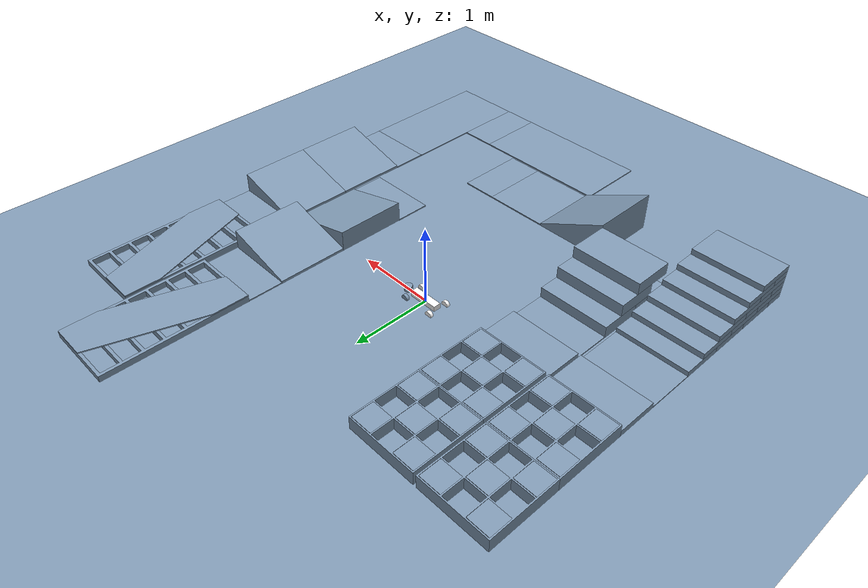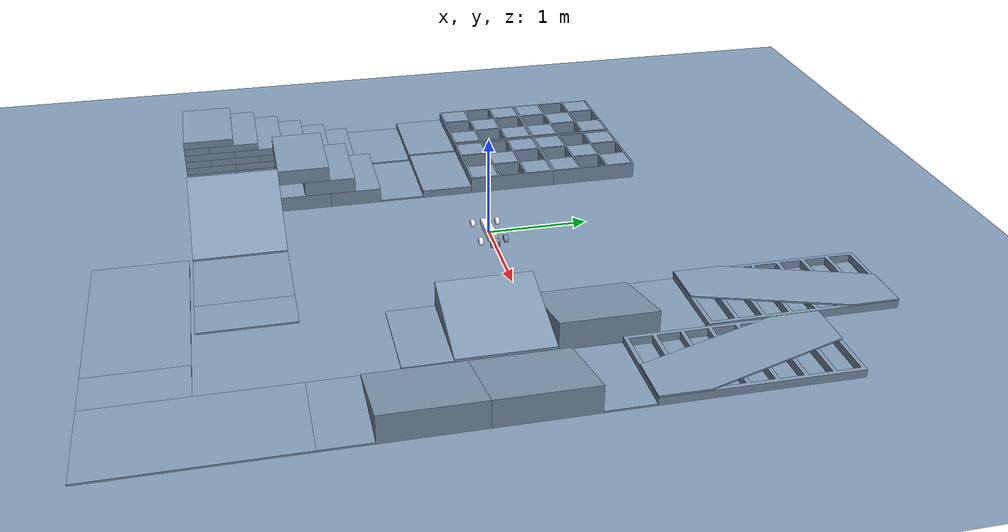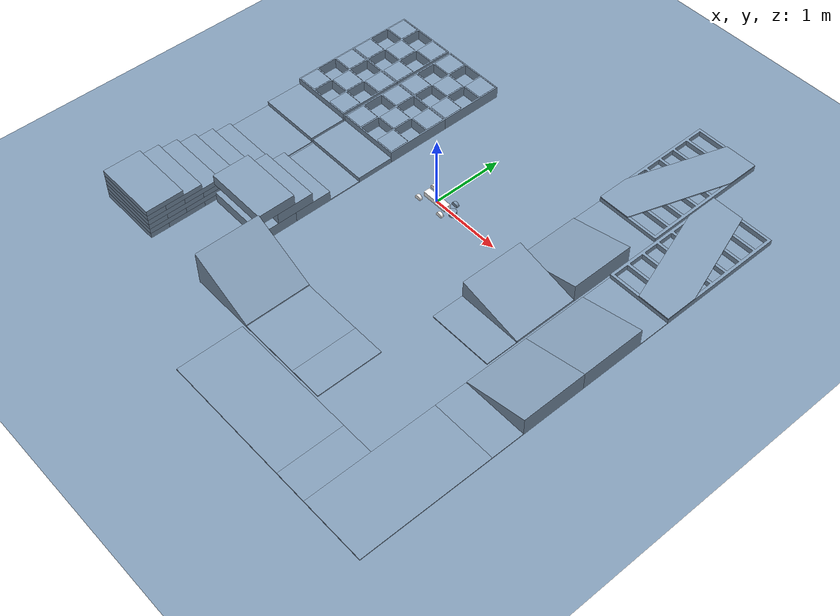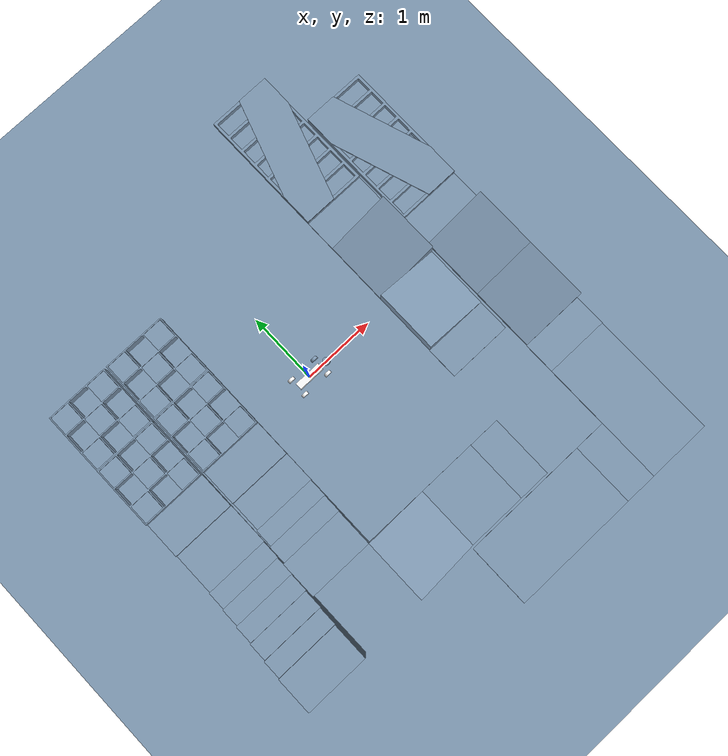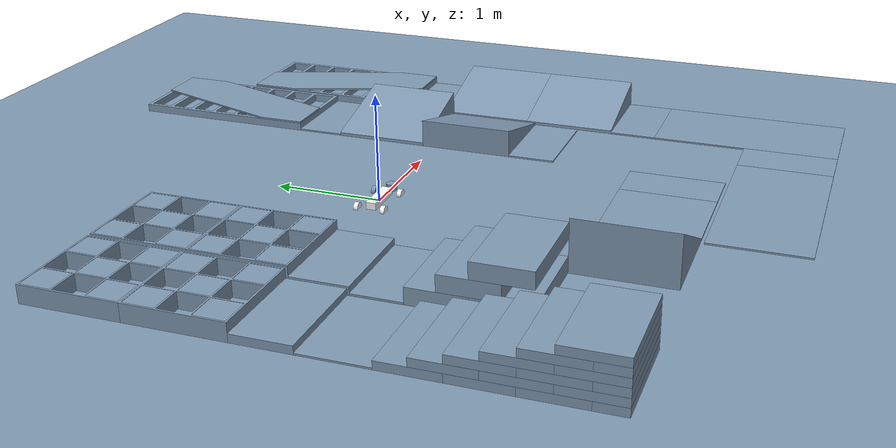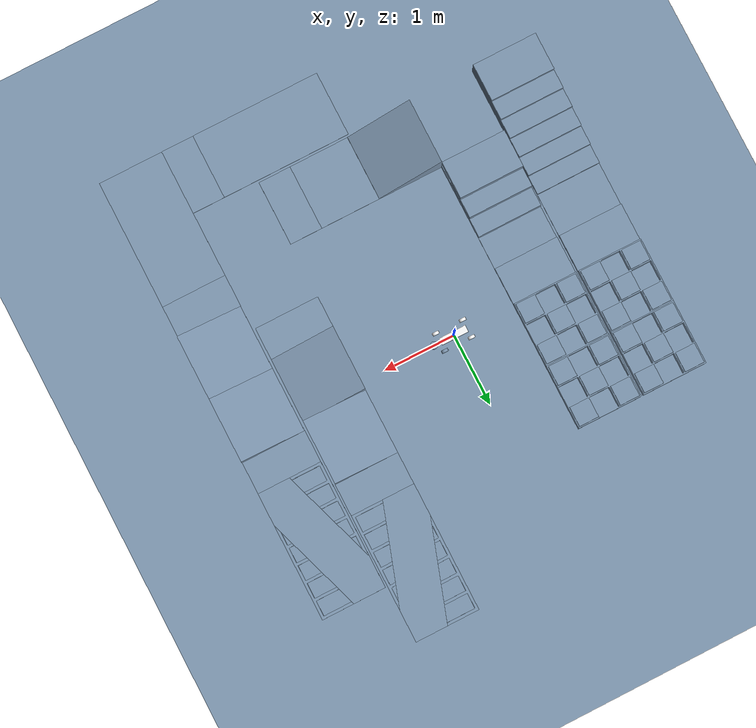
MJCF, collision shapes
<mujoco model="go2_icros2025">
  <!--
    ICROS 2025 QRC — MuJoCo Sim2Sim
    material별 convex OBJ 기반. 큰 벽 mesh 일부는 convex hull이 입구를 막아 visual-only 처리.
    Gazebo pose: 0.715068 3.66371 0
    스폰: ICROS2025 입구 앞 테스트 위치
  -->

  <include file="go2.xml"/>
  <statistic center="2.5 -1 0.5" extent="6.0"/>

  <visual>
    <headlight diffuse="0.6 0.6 0.6" ambient="0.2 0.2 0.2" specular="0 0 0"/>
    <rgba haze="0.15 0.25 0.35 1"/>
    <global azimuth="-130" elevation="-20"/>
  </visual>

  <asset>
    <texture type="skybox" builtin="gradient"
             rgb1="0.4 0.5 0.7" rgb2="0.05 0.05 0.15"
             width="512" height="3072"/>
    <texture type="2d" name="groundplane" builtin="checker"
             mark="edge" rgb1="0.25 0.25 0.25" rgb2="0.2 0.2 0.2"
             markrgb="0.5 0.5 0.5" width="200" height="200"/>
    <material name="groundplane" texture="groundplane"
              texuniform="true" texrepeat="5 5" reflectance="0.1"/>
    <material name="competition_map" rgba="0.58 0.55 0.51 1"
              specular="0.1" shininess="0.1" reflectance="0.04"/>

    <mesh name="icros_material214" file="icros2025/material214.obj" scale="0.001 0.001 0.001"/>
    <mesh name="icros_material215" file="icros2025/material215.obj" scale="0.001 0.001 0.001"/>
    <mesh name="icros_material216" file="icros2025/material216.obj" scale="0.001 0.001 0.001"/>
    <mesh name="icros_material217" file="icros2025/material217.obj" scale="0.001 0.001 0.001"/>
    <mesh name="icros_material218" file="icros2025/material218.obj" scale="0.001 0.001 0.001"/>
    <mesh name="icros_material219" file="icros2025/material219.obj" scale="0.001 0.001 0.001"/>
    <mesh name="icros_material220" file="icros2025/material220.obj" scale="0.001 0.001 0.001"/>
    <mesh name="icros_material221" file="icros2025/material221.obj" scale="0.001 0.001 0.001"/>
    <mesh name="icros_material222" file="icros2025/material222.obj" scale="0.001 0.001 0.001"/>
    <mesh name="icros_material223" file="icros2025/material223.obj" scale="0.001 0.001 0.001"/>
    <mesh name="icros_material224" file="icros2025/material224.obj" scale="0.001 0.001 0.001"/>
    <mesh name="icros_material225" file="icros2025/material225.obj" scale="0.001 0.001 0.001"/>
    <mesh name="icros_material226" file="icros2025/material226.obj" scale="0.001 0.001 0.001"/>
    <mesh name="icros_material227" file="icros2025/material227.obj" scale="0.001 0.001 0.001"/>
    <mesh name="icros_material228" file="icros2025/material228.obj" scale="0.001 0.001 0.001"/>
    <mesh name="icros_material229" file="icros2025/material229.obj" scale="0.001 0.001 0.001"/>
    <mesh name="icros_material230" file="icros2025/material230.obj" scale="0.001 0.001 0.001"/>
    <mesh name="icros_material231" file="icros2025/material231.obj" scale="0.001 0.001 0.001"/>
    <mesh name="icros_material232" file="icros2025/material232.obj" scale="0.001 0.001 0.001"/>
    <mesh name="icros_material233" file="icros2025/material233.obj" scale="0.001 0.001 0.001"/>
    <mesh name="icros_material234" file="icros2025/material234.obj" scale="0.001 0.001 0.001"/>
    <mesh name="icros_material235" file="icros2025/material235.obj" scale="0.001 0.001 0.001"/>
    <mesh name="icros_material236" file="icros2025/material236.obj" scale="0.001 0.001 0.001"/>
    <mesh name="icros_material237" file="icros2025/material237.obj" scale="0.001 0.001 0.001"/>
    <mesh name="icros_material238" file="icros2025/material238.obj" scale="0.001 0.001 0.001"/>
    <mesh name="icros_material239" file="icros2025/material239.obj" scale="0.001 0.001 0.001"/>
    <mesh name="icros_material240" file="icros2025/material240.obj" scale="0.001 0.001 0.001"/>
    <mesh name="icros_material241" file="icros2025/material241.obj" scale="0.001 0.001 0.001"/>
    <mesh name="icros_material242" file="icros2025/material242.obj" scale="0.001 0.001 0.001"/>
    <mesh name="icros_material243" file="icros2025/material243.obj" scale="0.001 0.001 0.001"/>
    <mesh name="icros_material244" file="icros2025/material244.obj" scale="0.001 0.001 0.001"/>
    <mesh name="icros_material245" file="icros2025/material245.obj" scale="0.001 0.001 0.001"/>
    <mesh name="icros_material246" file="icros2025/material246.obj" scale="0.001 0.001 0.001"/>
    <mesh name="icros_material247" file="icros2025/material247.obj" scale="0.001 0.001 0.001"/>
    <mesh name="icros_material248" file="icros2025/material248.obj" scale="0.001 0.001 0.001"/>
    <mesh name="icros_material249" file="icros2025/material249.obj" scale="0.001 0.001 0.001"/>
    <mesh name="icros_material250" file="icros2025/material250.obj" scale="0.001 0.001 0.001"/>
    <mesh name="icros_material251" file="icros2025/material251.obj" scale="0.001 0.001 0.001"/>
    <mesh name="icros_material252" file="icros2025/material252.obj" scale="0.001 0.001 0.001"/>
    <mesh name="icros_material253" file="icros2025/material253.obj" scale="0.001 0.001 0.001"/>
    <mesh name="icros_material254" file="icros2025/material254.obj" scale="0.001 0.001 0.001"/>
    <mesh name="icros_material255" file="icros2025/material255.obj" scale="0.001 0.001 0.001"/>
    <mesh name="icros_material256" file="icros2025/material256.obj" scale="0.001 0.001 0.001"/>
    <mesh name="icros_material257" file="icros2025/material257.obj" scale="0.001 0.001 0.001"/>
    <mesh name="icros_material258" file="icros2025/material258.obj" scale="0.001 0.001 0.001"/>
    <mesh name="icros_material259" file="icros2025/material259.obj" scale="0.001 0.001 0.001"/>
    <mesh name="icros_material260" file="icros2025/material260.obj" scale="0.001 0.001 0.001"/>
    <mesh name="icros_material261" file="icros2025/material261.obj" scale="0.001 0.001 0.001"/>
    <mesh name="icros_material262" file="icros2025/material262.obj" scale="0.001 0.001 0.001"/>
    <mesh name="icros_material263" file="icros2025/material263.obj" scale="0.001 0.001 0.001"/>
    <mesh name="icros_material264" file="icros2025/material264.obj" scale="0.001 0.001 0.001"/>
    <mesh name="icros_material265" file="icros2025/material265.obj" scale="0.001 0.001 0.001"/>
    <mesh name="icros_material266" file="icros2025/material266.obj" scale="0.001 0.001 0.001"/>
    <mesh name="icros_material267" file="icros2025/material267.obj" scale="0.001 0.001 0.001"/>
    <mesh name="icros_material268" file="icros2025/material268.obj" scale="0.001 0.001 0.001"/>
    <mesh name="icros_material269" file="icros2025/material269.obj" scale="0.001 0.001 0.001"/>
    <mesh name="icros_material270" file="icros2025/material270.obj" scale="0.001 0.001 0.001"/>
    <mesh name="icros_material271" file="icros2025/material271.obj" scale="0.001 0.001 0.001"/>
    <mesh name="icros_material272" file="icros2025/material272.obj" scale="0.001 0.001 0.001"/>
    <mesh name="icros_material273" file="icros2025/material273.obj" scale="0.001 0.001 0.001"/>
    <mesh name="icros_material274" file="icros2025/material274.obj" scale="0.001 0.001 0.001"/>
    <mesh name="icros_material275" file="icros2025/material275.obj" scale="0.001 0.001 0.001"/>
    <mesh name="icros_material276" file="icros2025/material276.obj" scale="0.001 0.001 0.001"/>
    <mesh name="icros_material277" file="icros2025/material277.obj" scale="0.001 0.001 0.001"/>
    <mesh name="icros_material278" file="icros2025/material278.obj" scale="0.001 0.001 0.001"/>
    <mesh name="icros_material279" file="icros2025/material279.obj" scale="0.001 0.001 0.001"/>
    <mesh name="icros_material280" file="icros2025/material280.obj" scale="0.001 0.001 0.001"/>
    <mesh name="icros_material281" file="icros2025/material281.obj" scale="0.001 0.001 0.001"/>
    <mesh name="icros_material282" file="icros2025/material282.obj" scale="0.001 0.001 0.001"/>
    <mesh name="icros_material283" file="icros2025/material283.obj" scale="0.001 0.001 0.001"/>
    <mesh name="icros_material284" file="icros2025/material284.obj" scale="0.001 0.001 0.001"/>
  </asset>

  <worldbody>
    <light name="sun" pos="2 1 12" dir="-0.1 -0.1 -1" directional="true"
           diffuse="0.75 0.75 0.75" specular="0.1 0.1 0.1" castshadow="true"/>
    <light name="fill_1" pos="6 6 8" dir="-0.6 -0.6 -1" directional="true"
           diffuse="0.3 0.3 0.3" castshadow="false"/>
    <light name="fill_2" pos="-4 -2 8" dir="0.4 0.2 -1" directional="true"
           diffuse="0.25 0.25 0.25" castshadow="false"/>

    <geom name="floor" type="plane" size="50 50 0.1"
          material="groundplane" pos="0 0 0"
          contype="1" conaffinity="1" friction="0.8 0.005 0.0001"/>

    <!-- material214 is the large ICROS2025 base-floor mesh; keep the MuJoCo plane instead. -->
    <geom name="icros_material215" type="mesh" mesh="icros_material215" material="competition_map" pos="0.715068 3.66371 0" contype="1" conaffinity="1" friction="0.5 0.005 0.0001"/>
    <geom name="icros_material216" type="mesh" mesh="icros_material216" material="competition_map" pos="0.715068 3.66371 0" contype="1" conaffinity="1" friction="0.5 0.005 0.0001"/>
    <geom name="icros_material217" type="mesh" mesh="icros_material217" material="competition_map" pos="0.715068 3.66371 0" contype="1" conaffinity="1" friction="0.5 0.005 0.0001"/>
    <geom name="icros_material218" type="mesh" mesh="icros_material218" material="competition_map" pos="0.715068 3.66371 0" contype="1" conaffinity="1" friction="0.5 0.005 0.0001"/>
    <geom name="icros_material219" type="mesh" mesh="icros_material219" material="competition_map" pos="0.715068 3.66371 0" contype="1" conaffinity="1" friction="0.5 0.005 0.0001"/>
    <geom name="icros_material220" type="mesh" mesh="icros_material220" material="competition_map" pos="0.715068 3.66371 0" contype="1" conaffinity="1" friction="0.5 0.005 0.0001"/>
    <geom name="icros_material221" type="mesh" mesh="icros_material221" material="competition_map" pos="0.715068 3.66371 0" contype="1" conaffinity="1" friction="0.5 0.005 0.0001"/>
    <geom name="icros_material222" type="mesh" mesh="icros_material222" material="competition_map" pos="0.715068 3.66371 0" contype="1" conaffinity="1" friction="0.5 0.005 0.0001"/>
    <geom name="icros_material223" type="mesh" mesh="icros_material223" material="competition_map" pos="0.715068 3.66371 0" contype="1" conaffinity="1" friction="0.5 0.005 0.0001"/>
    <geom name="icros_material224" type="mesh" mesh="icros_material224" material="competition_map" pos="0.715068 3.66371 0" contype="1" conaffinity="1" friction="0.5 0.005 0.0001"/>
    <geom name="icros_material225" type="mesh" mesh="icros_material225" material="competition_map" pos="0.715068 3.66371 0" contype="1" conaffinity="1" friction="0.5 0.005 0.0001"/>
    <geom name="icros_material226" type="mesh" mesh="icros_material226" material="competition_map" pos="0.715068 3.66371 0" contype="1" conaffinity="1" friction="0.5 0.005 0.0001"/>
    <geom name="icros_material227" type="mesh" mesh="icros_material227" material="competition_map" pos="0.715068 3.66371 0" contype="0" conaffinity="0" friction="0.5 0.005 0.0001"/>
    <geom name="icros_material228" type="mesh" mesh="icros_material228" material="competition_map" pos="0.715068 3.66371 0" contype="1" conaffinity="1" friction="0.5 0.005 0.0001"/>
    <geom name="icros_material229" type="mesh" mesh="icros_material229" material="competition_map" pos="0.715068 3.66371 0" contype="1" conaffinity="1" friction="0.5 0.005 0.0001"/>
    <geom name="icros_material230" type="mesh" mesh="icros_material230" material="competition_map" pos="0.715068 3.66371 0" contype="1" conaffinity="1" friction="0.5 0.005 0.0001"/>
    <geom name="icros_material231" type="mesh" mesh="icros_material231" material="competition_map" pos="0.715068 3.66371 0" contype="0" conaffinity="0" friction="0.5 0.005 0.0001"/>
    <geom name="icros_material232" type="mesh" mesh="icros_material232" material="competition_map" pos="0.715068 3.66371 0" contype="1" conaffinity="1" friction="0.5 0.005 0.0001"/>
    <geom name="icros_material233" type="mesh" mesh="icros_material233" material="competition_map" pos="0.715068 3.66371 0" contype="0" conaffinity="0" friction="0.5 0.005 0.0001"/>
    <geom name="icros_material234" type="mesh" mesh="icros_material234" material="competition_map" pos="0.715068 3.66371 0" contype="1" conaffinity="1" friction="0.5 0.005 0.0001"/>
    <geom name="icros_material235" type="mesh" mesh="icros_material235" material="competition_map" pos="0.715068 3.66371 0" contype="1" conaffinity="1" friction="0.5 0.005 0.0001"/>
    <geom name="icros_material236" type="mesh" mesh="icros_material236" material="competition_map" pos="0.715068 3.66371 0" contype="0" conaffinity="0" friction="0.5 0.005 0.0001"/>
    <geom name="icros_material237" type="mesh" mesh="icros_material237" material="competition_map" pos="0.715068 3.66371 0" contype="1" conaffinity="1" friction="0.5 0.005 0.0001"/>
    <geom name="icros_material238" type="mesh" mesh="icros_material238" material="competition_map" pos="0.715068 3.66371 0" contype="1" conaffinity="1" friction="0.5 0.005 0.0001"/>
    <geom name="icros_material239" type="mesh" mesh="icros_material239" material="competition_map" pos="0.715068 3.66371 0" contype="1" conaffinity="1" friction="0.5 0.005 0.0001"/>
    <geom name="icros_material240" type="mesh" mesh="icros_material240" material="competition_map" pos="0.715068 3.66371 0" contype="1" conaffinity="1" friction="0.5 0.005 0.0001"/>
    <geom name="icros_material241" type="mesh" mesh="icros_material241" material="competition_map" pos="0.715068 3.66371 0" contype="1" conaffinity="1" friction="0.5 0.005 0.0001"/>
    <geom name="icros_material242" type="mesh" mesh="icros_material242" material="competition_map" pos="0.715068 3.66371 0" contype="1" conaffinity="1" friction="0.5 0.005 0.0001"/>
    <geom name="icros_material243" type="mesh" mesh="icros_material243" material="competition_map" pos="0.715068 3.66371 0" contype="1" conaffinity="1" friction="0.5 0.005 0.0001"/>
    <geom name="icros_material244" type="mesh" mesh="icros_material244" material="competition_map" pos="0.715068 3.66371 0" contype="1" conaffinity="1" friction="0.5 0.005 0.0001"/>
    <geom name="icros_material245" type="mesh" mesh="icros_material245" material="competition_map" pos="0.715068 3.66371 0" contype="1" conaffinity="1" friction="0.5 0.005 0.0001"/>
    <geom name="icros_material246" type="mesh" mesh="icros_material246" material="competition_map" pos="0.715068 3.66371 0" contype="1" conaffinity="1" friction="0.5 0.005 0.0001"/>
    <geom name="icros_material247" type="mesh" mesh="icros_material247" material="competition_map" pos="0.715068 3.66371 0" contype="1" conaffinity="1" friction="0.5 0.005 0.0001"/>
    <geom name="icros_material248" type="mesh" mesh="icros_material248" material="competition_map" pos="0.715068 3.66371 0" contype="1" conaffinity="1" friction="0.5 0.005 0.0001"/>
    <geom name="icros_material249" type="mesh" mesh="icros_material249" material="competition_map" pos="0.715068 3.66371 0" contype="1" conaffinity="1" friction="0.5 0.005 0.0001"/>
    <geom name="icros_material250" type="mesh" mesh="icros_material250" material="competition_map" pos="0.715068 3.66371 0" contype="1" conaffinity="1" friction="0.5 0.005 0.0001"/>
    <geom name="icros_material251" type="mesh" mesh="icros_material251" material="competition_map" pos="0.715068 3.66371 0" contype="1" conaffinity="1" friction="0.5 0.005 0.0001"/>
    <geom name="icros_material252" type="mesh" mesh="icros_material252" material="competition_map" pos="0.715068 3.66371 0" contype="1" conaffinity="1" friction="0.5 0.005 0.0001"/>
    <geom name="icros_material253" type="mesh" mesh="icros_material253" material="competition_map" pos="0.715068 3.66371 0" contype="1" conaffinity="1" friction="0.5 0.005 0.0001"/>
    <geom name="icros_material254" type="mesh" mesh="icros_material254" material="competition_map" pos="0.715068 3.66371 0" contype="1" conaffinity="1" friction="0.5 0.005 0.0001"/>
    <geom name="icros_material255" type="mesh" mesh="icros_material255" material="competition_map" pos="0.715068 3.66371 0" contype="1" conaffinity="1" friction="0.5 0.005 0.0001"/>
    <geom name="icros_material256" type="mesh" mesh="icros_material256" material="competition_map" pos="0.715068 3.66371 0" contype="0" conaffinity="0" friction="0.5 0.005 0.0001"/>
    <geom name="icros_material257" type="mesh" mesh="icros_material257" material="competition_map" pos="0.715068 3.66371 0" contype="1" conaffinity="1" friction="0.5 0.005 0.0001"/>
    <geom name="icros_material258" type="mesh" mesh="icros_material258" material="competition_map" pos="0.715068 3.66371 0" contype="1" conaffinity="1" friction="0.5 0.005 0.0001"/>
    <geom name="icros_material259" type="mesh" mesh="icros_material259" material="competition_map" pos="0.715068 3.66371 0" contype="1" conaffinity="1" friction="0.5 0.005 0.0001"/>
    <geom name="icros_material260" type="mesh" mesh="icros_material260" material="competition_map" pos="0.715068 3.66371 0" contype="1" conaffinity="1" friction="0.5 0.005 0.0001"/>
    <geom name="icros_material261" type="mesh" mesh="icros_material261" material="competition_map" pos="0.715068 3.66371 0" contype="1" conaffinity="1" friction="0.5 0.005 0.0001"/>
    <geom name="icros_material262" type="mesh" mesh="icros_material262" material="competition_map" pos="0.715068 3.66371 0" contype="1" conaffinity="1" friction="0.5 0.005 0.0001"/>
    <geom name="icros_material263" type="mesh" mesh="icros_material263" material="competition_map" pos="0.715068 3.66371 0" contype="1" conaffinity="1" friction="0.5 0.005 0.0001"/>
    <geom name="icros_material264" type="mesh" mesh="icros_material264" material="competition_map" pos="0.715068 3.66371 0" contype="1" conaffinity="1" friction="0.5 0.005 0.0001"/>
    <geom name="icros_material265" type="mesh" mesh="icros_material265" material="competition_map" pos="0.715068 3.66371 0" contype="1" conaffinity="1" friction="0.5 0.005 0.0001"/>
    <geom name="icros_material266" type="mesh" mesh="icros_material266" material="competition_map" pos="0.715068 3.66371 0" contype="1" conaffinity="1" friction="0.5 0.005 0.0001"/>
    <geom name="icros_material267" type="mesh" mesh="icros_material267" material="competition_map" pos="0.715068 3.66371 0" contype="1" conaffinity="1" friction="0.5 0.005 0.0001"/>
    <geom name="icros_material268" type="mesh" mesh="icros_material268" material="competition_map" pos="0.715068 3.66371 0" contype="1" conaffinity="1" friction="0.5 0.005 0.0001"/>
    <geom name="icros_material269" type="mesh" mesh="icros_material269" material="competition_map" pos="0.715068 3.66371 0" contype="1" conaffinity="1" friction="0.5 0.005 0.0001"/>
    <geom name="icros_material270" type="mesh" mesh="icros_material270" material="competition_map" pos="0.715068 3.66371 0" contype="1" conaffinity="1" friction="0.5 0.005 0.0001"/>
    <geom name="icros_material271" type="mesh" mesh="icros_material271" material="competition_map" pos="0.715068 3.66371 0" contype="1" conaffinity="1" friction="0.5 0.005 0.0001"/>
    <geom name="icros_material272" type="mesh" mesh="icros_material272" material="competition_map" pos="0.715068 3.66371 0" contype="1" conaffinity="1" friction="0.5 0.005 0.0001"/>
    <geom name="icros_material273" type="mesh" mesh="icros_material273" material="competition_map" pos="0.715068 3.66371 0" contype="1" conaffinity="1" friction="0.5 0.005 0.0001"/>
    <geom name="icros_material274" type="mesh" mesh="icros_material274" material="competition_map" pos="0.715068 3.66371 0" contype="1" conaffinity="1" friction="0.5 0.005 0.0001"/>
    <geom name="icros_material275" type="mesh" mesh="icros_material275" material="competition_map" pos="0.715068 3.66371 0" contype="1" conaffinity="1" friction="0.5 0.005 0.0001"/>
    <geom name="icros_material276" type="mesh" mesh="icros_material276" material="competition_map" pos="0.715068 3.66371 0" contype="1" conaffinity="1" friction="0.5 0.005 0.0001"/>
    <geom name="icros_material277" type="mesh" mesh="icros_material277" material="competition_map" pos="0.715068 3.66371 0" contype="1" conaffinity="1" friction="0.5 0.005 0.0001"/>
    <geom name="icros_material278" type="mesh" mesh="icros_material278" material="competition_map" pos="0.715068 3.66371 0" contype="1" conaffinity="1" friction="0.5 0.005 0.0001"/>
    <geom name="icros_material279" type="mesh" mesh="icros_material279" material="competition_map" pos="0.715068 3.66371 0" contype="1" conaffinity="1" friction="0.5 0.005 0.0001"/>
    <geom name="icros_material280" type="mesh" mesh="icros_material280" material="competition_map" pos="0.715068 3.66371 0" contype="1" conaffinity="1" friction="0.5 0.005 0.0001"/>
    <geom name="icros_material281" type="mesh" mesh="icros_material281" material="competition_map" pos="0.715068 3.66371 0" contype="1" conaffinity="1" friction="0.5 0.005 0.0001"/>
    <geom name="icros_material282" type="mesh" mesh="icros_material282" material="competition_map" pos="0.715068 3.66371 0" contype="1" conaffinity="1" friction="0.5 0.005 0.0001"/>
    <geom name="icros_material283" type="mesh" mesh="icros_material283" material="competition_map" pos="0.715068 3.66371 0" contype="1" conaffinity="1" friction="0.5 0.005 0.0001"/>
    <geom name="icros_material284" type="mesh" mesh="icros_material284" material="competition_map" pos="0.715068 3.66371 0" contype="1" conaffinity="1" friction="0.5 0.005 0.0001"/>
  </worldbody>

  <keyframe>
    <key name="start"
         qpos="1.85 4.50 0.70  0.7071068 0 0 0.7071068
               0.0  0.8 -1.5
               0.0  0.8 -1.5
               0.0  1.0 -1.5
               0.0  1.0 -1.5"
         ctrl="0 0 0  0 0 0  0 0 0  0 0 0"/>
  </keyframe>

</mujoco>

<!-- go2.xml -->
<mujoco model="go2_description">
  <compiler angle="radian" meshdir="assets/"/>

  <asset>
    <mesh name="base_0"          file="base_0.obj"/>
    <mesh name="base_1"          file="base_1.obj"/>
    <mesh name="base_2"          file="base_2.obj"/>
    <mesh name="base_3"          file="base_3.obj"/>
    <mesh name="base_4"  		 file="base_4.obj"/>
    <mesh name="hip_0" 			 file="hip_0.obj"/>
    <mesh name="hip_1" 			 file="hip_1.obj"/>
    <mesh name="thigh_0" 		 file="thigh_0.obj"/>
    <mesh name="thigh_1" 		 file="thigh_1.obj"/>
    <mesh name="thigh_mirror_0"  file="thigh_mirror_0.obj"/>
    <mesh name="thigh_mirror_1"  file="thigh_mirror_1.obj"/>
    <mesh name="calf_0" 		 file="calf_0.obj"/>
    <mesh name="calf_1" 		 file="calf_1.obj"/>
    <mesh name="calf_mirror_0"   file="calf_mirror_0.obj"/>
    <mesh name="calf_mirror_1"   file="calf_mirror_1.obj"/>
    <mesh name="foot"            file="foot.obj"/>
  </asset>

  <default>
      <geom contype="1" conaffinity="1" friction="0.6 0.3 0.3" rgba="0.5 0.6 0.7 1" margin="0.001" group="0"/>
      <motor ctrlrange="-33.5 33.5" ctrllimited="true"/>

      <joint type="hinge" armature="0.01" damping="0.2" frictionloss="0.2" />
  </default>

  <worldbody>

    <body name="base" pos="0 0 0">
		<freejoint name="root"/>
		<inertial pos="0.021112 0 -0.00536" mass="6.921" fullinertia="0.02448 0.098077 0.107 0.00012166 0.0014849 -3.12E-05"/>
		<geom type="mesh"  contype="0" conaffinity="0" group="1" density="0" mesh="base_0" rgba="0 0 0 1"  />
		<geom mesh="base_0" rgba="0 0 0 1" type="mesh" contype="0" conaffinity="0" group="1" density="0" />
		<geom mesh="base_1" rgba="0 0 0 1" type="mesh" contype="0" conaffinity="0" group="1" density="0" />
		<geom mesh="base_2" rgba="0 0 0 1" type="mesh" contype="0" conaffinity="0" group="1" density="0" />
		<geom mesh="base_3" rgba="0 0 0 1" type="mesh" contype="0" conaffinity="0" group="1" density="0" />
		<geom mesh="base_4" rgba="0.671705 0.692426 0.774270 1" type="mesh" contype="0" conaffinity="0" group="1" density="0" />
		<geom size="0.1881 0.04675 0.057" type="box" rgba="1 1 1 1"/>
		<geom size="0.05 0.045" pos="0.285 0 0.01" type="cylinder"/>
		<geom size="0.047" pos="0.293 0 -0.06"/>

		<body name="FL_hip" pos="0.1934 0.0465 0">
		  <inertial pos="-0.0054 0.00194 -0.000105" quat="0.497014 0.499245 0.505462 0.498237" mass="0.678" diaginertia="0.00088403 0.000596003 0.000479967"/>
		  <joint name="FL_hip_joint" type="hinge" pos="0 0 0" axis="1 0 0" range="-1.0472 1.0472" limited="true" actuatorfrcrange="-0.9472 0.9472" stiffness="15" damping="2"/>
		  <geom mesh="hip_0" rgba=".9 .95 .95 1" type="mesh" contype="0" conaffinity="0" group="1" density="0" />
          <geom mesh="hip_1" rgba="0.671705 0.692426 0.774270 1" type="mesh" contype="0" conaffinity="0" group="1" density="0" />
		  <geom size="0.046 0.02" pos="0 0.08 0" quat="1 1 0 0" type="cylinder"/>
		  <geom size="0.046 0.02" pos="0 0.08 0" quat="0.707107 0.707107 0 0" type="cylinder" rgba="1 1 1 1"/>

		  <body name="FL_thigh" pos="0 0.0955 0">
			<inertial pos="-0.00374 -0.0223 -0.0327" quat="0.829533 0.0847635 -0.0200632 0.551623" mass="1.152" diaginertia="0.00594973 0.00584149 0.000878787"/>
			<joint name="FL_thigh_joint" type="hinge" pos="0 0 0" axis="0 1 0" range="-1.5708 3.4907" limited="true"  actuatorfrcrange="-1.5708 3.4907" stiffness="15" damping="2"/>
			<geom mesh="thigh_0" rgba=".9 .95 .95 1" type="mesh" contype="0" conaffinity="0" group="1" density="0" />
          	<geom mesh="thigh_1" rgba="0.671705 0.692426 0.774270 1" type="mesh" contype="0" conaffinity="0" group="1" density="0" />
			<geom size="0.055 0.01225 0.017" pos="0 0 -0.1065" quat="0.707107 0 0.707107 0" type="box" rgba="1 1 1 1"/>

			<body name="FL_calf" pos="0 0 -0.213">
			  <inertial pos="0.00629595 -0.000622121 -0.141417" quat="0.710672 0.00154099 -0.00450087 0.703508" mass="0.241352" diaginertia="0.0014901 0.00146356 5.31397e-05"/>
			  <joint name="FL_calf_joint" type="hinge" pos="0 0 0" axis="0 1 0" range="-2.7227 -0.83776" limited="true" actuatorfrcrange="-45.43 45.43" stiffness="15" damping="2"/>
			  <geom mesh="calf_0" rgba="0.671705 0.692426 0.774270 1" type="mesh" contype="0" conaffinity="0" group="1" density="0" />
              <geom mesh="calf_1" rgba="0 0 0 1" type="mesh" contype="0" conaffinity="0" group="1" density="0" />
              <geom pos="0 0 -0.213" mesh="foot" type="mesh" contype="0" conaffinity="0" group="1" density="0"  rgba="0 0 0 1"/>
			  <geom size="0.012 0.06" pos="0.008 0 -0.06" quat="0.994493 0 -0.104807 0" type="cylinder" rgba="1 1 1 1"/>
			  <geom size="0.011 0.0325" pos="0.02 0 -0.148" quat="0.999688 0 0.0249974 0" type="cylinder"/>
			  <geom size="0.0155 0.015" pos="0.00801333 0 -0.18745" quat="0.965093 0 0.261909 0" type="cylinder"/>

				<body name="FL_foot" pos="0 0 -0.213">
					<geom size="0.022" pos="0 0 0" rgba="0 0 0 1" friction="0.8 0.02 0.01" type="sphere"/>
				</body>
			</body>
		  </body>
		</body>

		<body name="FR_hip" pos="0.1934 -0.0465 0">
		  <inertial pos="-0.0054 -0.00194 -0.000105" quat="0.498237 0.505462 0.499245 0.497014" mass="0.678" diaginertia="0.00088403 0.000596003 0.000479967"/>
		  <joint name="FR_hip_joint" type="hinge" pos="0 0 0" axis="1 0 0" range="-1.0472 1.0472" limited="true" actuatorfrcrange="-0.9472 0.9472" stiffness="15" damping="2"/>
          <geom mesh="hip_0" rgba=".9 .95 .95 1" type="mesh" contype="0" conaffinity="0" group="1" density="0"  quat="4.63268e-05 1 0 0"/>
          <geom mesh="hip_1" rgba="0.671705 0.692426 0.774270 1" type="mesh" contype="0" conaffinity="0" group="1" density="0"  quat="4.63268e-05 1 0 0" />
		  <geom size="0.046 0.02" pos="0 -0.08 0" quat="0.707107 0.707107 0 0" type="cylinder" rgba="1 1 1 1"/>

		  <body name="FR_thigh" pos="0 -0.0955 0">
			<inertial pos="-0.00374 0.0223 -0.0327" quat="0.551623 -0.0200632 0.0847635 0.829533" mass="1.152" diaginertia="0.00594973 0.00584149 0.000878787" />
			<joint name="FR_thigh_joint" type="hinge"  pos="0 0 0" axis="0 1 0" range="-1.5708 3.4907" limited="true"  actuatorfrcrange="-1.5708 3.4907" stiffness="15" damping="2"/>
            <geom mesh="thigh_mirror_0" rgba=".9 .95 .95 1" type="mesh" contype="0" conaffinity="0" group="1" density="0" />
            <geom mesh="thigh_mirror_1" rgba="0.671705 0.692426 0.774270 1" type="mesh" contype="0" conaffinity="0" group="1" density="0" />
			<geom size="0.055 0.01225 0.017" pos="0 0 -0.1065" quat="0.707107 0 0.707107 0" type="box" rgba="1 1 1 1"/>

			<body name="FR_calf" pos="0 0 -0.213">
			  <inertial pos="0.00629595 0.000622121 -0.141417" quat="0.703508 -0.00450087 0.00154099 0.710672" mass="0.241352" diaginertia="0.0014901 0.00146356 5.31397e-05"/>
			  <joint name="FR_calf_joint" type="hinge"  pos="0 0 0" axis="0 1 0" range="-2.7227 -0.83776" limited="true" actuatorfrcrange="-45.43 45.43" stiffness="15" damping="2"/>
			  <geom mesh="calf_mirror_0" rgba="0.671705 0.692426 0.774270 1" type="mesh" contype="0" conaffinity="0" group="1" density="0" />
              <geom mesh="calf_mirror_1" rgba="0 0 0 1" type="mesh" contype="0" conaffinity="0" group="1" density="0" />
              <geom pos="0 0 -0.213" mesh="foot" type="mesh" contype="0" conaffinity="0" group="1" density="0"  rgba="0 0 0 1"/>
			  <geom size="0.013 0.06" pos="0.01 0 -0.06" quat="0.995004 0 -0.0998334 0" type="cylinder" rgba="1 1 1 1"/>
			  <geom size="0.011 0.0325" pos="0.02 0 -0.148" quat="0.999688 0 0.0249974 0" type="cylinder"/>
			  <geom size="0.0155 0.015" pos="0.00801333 0 -0.18745" quat="0.965093 0 0.261909 0" type="cylinder"/>

				<body name="FR_foot" pos="0 0 -0.213">
					<geom size="0.022" pos="0 0 0" rgba="0 0 0 1" friction="0.8 0.02 0.01" type="sphere" />
				</body>
			</body>
		  </body>
		</body>

		<body name="RL_hip" pos="-0.1934 0.0465 0">
		  <inertial pos="0.0054 0.00194 -0.000105" quat="0.505462 0.498237 0.497014 0.499245" mass="0.678" diaginertia="0.00088403 0.000596003 0.000479967"/>
		  <joint name="RL_hip_joint" type="hinge" pos="0 0 0" axis="1 0 0" range="-1.0472 1.0472" limited="true" actuatorfrcrange="-0.9472 0.9472" stiffness="15" damping="2"/>
		  <geom mesh="hip_0" rgba=".9 .95 .95 1" type="mesh" contype="0" conaffinity="0" group="1" density="0"  quat="4.63268e-05 0 1 0"/>
          <geom mesh="hip_1" rgba="0.671705 0.692426 0.774270 1" type="mesh" contype="0" conaffinity="0" group="1" density="0"  quat="4.63268e-05 0 1 0"/>
		  <geom size="0.046 0.02" pos="0 0.08 0" quat="0.707107 0.707107 0 0" type="cylinder" rgba="1 1 1 1"/>

		  <body name="RL_thigh" pos="0 0.0955 0">
			<inertial pos="-0.00374 -0.0223 -0.0327" quat="0.829533 0.0847635 -0.0200632 0.551623" mass="1.152" diaginertia="0.00594973 0.00584149 0.000878787"/>
			<joint name="RL_thigh_joint" type="hinge" pos="0 0 0" axis="0 1 0" range="-0.5236 4.5379" limited="true" actuatorfrcrange="-0.5236 4.5379" stiffness="15" damping="2"/>
            <geom mesh="thigh_0" rgba=".9 .95 .95 1" type="mesh" contype="0" conaffinity="0" group="1" density="0" />
            <geom mesh="thigh_1" rgba="0.671705 0.692426 0.774270 1" type="mesh" contype="0" conaffinity="0" group="1" density="0" />
			<geom size="0.055 0.01225 0.017" pos="0 0 -0.1065" quat="0.707107 0 0.707107 0" type="box" rgba="1 1 1 1"/>

			<body name="RL_calf" pos="0 0 -0.213">
			  <inertial pos="0.00629595 -0.000622121 -0.141417" quat="0.710672 0.00154099 -0.00450087 0.703508" mass="0.241352" diaginertia="0.0014901 0.00146356 5.31397e-05"/>
			  <joint name="RL_calf_joint" type="hinge"  pos="0 0 0" axis="0 1 0" range="-2.7227 -0.83776" limited="true" actuatorfrcrange="-45.43 45.43" stiffness="15" damping="2"/>
			  <geom mesh="calf_0" rgba="0.671705 0.692426 0.774270 1" type="mesh" contype="0" conaffinity="0" group="1" density="0" />
              <geom mesh="calf_1" rgba="0 0 0 1" type="mesh" contype="0" conaffinity="0" group="1" density="0" />
              <geom pos="0 0 -0.213" mesh="foot" type="mesh" contype="0" conaffinity="0" group="1" density="0"  rgba="0 0 0 1"/>
			  <geom size="0.013 0.06" pos="0.01 0 -0.06" quat="0.995004 0 -0.0998334 0" type="cylinder" rgba="1 1 1 1"/>
			  <geom size="0.011 0.0325" pos="0.02 0 -0.148" quat="0.999688 0 0.0249974 0" type="cylinder"/>
			  <geom size="0.0155 0.015" pos="0.00801333 0 -0.18745" quat="0.965093 0 0.261909 0" type="cylinder"/>

				<body name="RL_foot" pos="0 0 -0.213">
					<geom size="0.022" pos="0 0 0" rgba="0 0 0 1" friction="0.8 0.02 0.01" type="sphere"/>
				</body>
			</body>
		  </body>
		</body>

		<body name="RR_hip" pos="-0.1934 -0.0465 0">
		  <inertial pos="0.0054 -0.00194 -0.000105" quat="0.499245 0.497014 0.498237 0.505462" mass="0.678" diaginertia="0.00088403 0.000596003 0.000479967"/>
		  <joint name="RR_hip_joint" type="hinge"  pos="0 0 0" axis="1 0 0" range="-1.0472 1.0472" limited="true"  actuatorfrcrange="-0.9472 0.9472" stiffness="15" damping="2"/>
		  <geom mesh="hip_0" rgba=".9 .95 .95 1" type="mesh" contype="0" conaffinity="0" group="1" density="0"  quat="2.14617e-09 4.63268e-05 4.63268e-05 -1"/>
          <geom mesh="hip_1" rgba="0.671705 0.692426 0.774270 1" type="mesh" contype="0" conaffinity="0" group="1" density="0"  quat="2.14617e-09 4.63268e-05 4.63268e-05 -1"/>
		  <geom size="0.046 0.02" pos="0 -0.08 0" quat="0.707107 0.707107 0 0" type="cylinder" rgba="1 1 1 1"/>

		  <body name="RR_thigh" pos="0 -0.0955 0">
			<inertial pos="-0.00374 0.0223 -0.0327" quat="0.551623 -0.0200632 0.0847635 0.829533" mass="1.152" diaginertia="0.00594973 0.00584149 0.000878787"/>
			<joint name="RR_thigh_joint" type="hinge" pos="0 0 0" axis="0 1 0" range="-0.5236 4.5379" limited="true" actuatorfrcrange="-0.5236 4.5379" stiffness="15" damping="2"/>
			<geom mesh="thigh_mirror_0" rgba=".9 .95 .95 1" type="mesh" contype="0" conaffinity="0" group="1" density="0" />
            <geom mesh="thigh_mirror_1" rgba="0.671705 0.692426 0.774270 1" type="mesh" contype="0" conaffinity="0" group="1" density="0" />
			<geom size="0.055 0.01225 0.017" pos="0 0 -0.1065" quat="0.707107 0 0.707107 0" type="box" rgba="1 1 1 1"/>

			<body name="RR_calf" pos="0 0 -0.213">
			  <inertial pos="0.00629595 0.000622121 -0.141417" quat="0.703508 -0.00450087 0.00154099 0.710672" mass="0.241352" diaginertia="0.0014901 0.00146356 5.31397e-05"/>
			  <joint name="RR_calf_joint" type="hinge"  pos="0 0 0" axis="0 1 0" range="-2.7227 -0.83776" limited="true" actuatorfrcrange="-45.43 45.43" stiffness="15" damping="2"/>
			  <geom mesh="calf_mirror_0" rgba="0.671705 0.692426 0.774270 1" type="mesh" contype="0" conaffinity="0" group="1" density="0" />
              <geom mesh="calf_mirror_1" rgba="0 0 0 1" type="mesh" contype="0" conaffinity="0" group="1" density="0" />
              <geom pos="0 0 -0.213" mesh="foot" type="mesh" contype="0" conaffinity="0" group="1" density="0"  rgba="0 0 0 1"/>
			  <geom size="0.013 0.06" pos="0.01 0 -0.06" quat="0.995004 0 -0.0998334 0" type="cylinder" rgba="1 1 1 1"/>
			  <geom size="0.011 0.0325" pos="0.02 0 -0.148" quat="0.999688 0 0.0249974 0" type="cylinder"/>
			  <geom size="0.0155 0.015" pos="0.00801333 0 -0.18745" quat="0.965093 0 0.261909 0" type="cylinder"/>

				<body name="RR_foot" pos="0 0 -0.213">
					<geom size="0.022" pos="0 0 0" rgba="0 0 0 1" friction="0.8 0.02 0.01" type="sphere"/>
				</body>

			</body>
		  </body>
		</body>

	 </body>
  </worldbody>

  <actuator>
    <motor  name="FR_hip"    gear="23.7" joint="FR_hip_joint"/>
    <motor  name="FR_thigh"  gear="23.7" joint="FR_thigh_joint"/>
    <motor  name="FR_calf"   gear="35.5" joint="FR_calf_joint"/>

	<motor  name="FL_hip"    gear="23.7" joint="FL_hip_joint"/>
    <motor  name="FL_thigh"  gear="23.7" joint="FL_thigh_joint"/>
    <motor  name="FL_calf"   gear="35.5" joint="FL_calf_joint"/>

    <motor  name="RR_hip"    gear="23.7" joint="RR_hip_joint"/>
    <motor  name="RR_thigh"  gear="23.7" joint="RR_thigh_joint"/>
    <motor  name="RR_calf"   gear="35.5" joint="RR_calf_joint"/>

    <motor  name="RL_hip"    gear="23.7" joint="RL_hip_joint"/>
    <motor  name="RL_thigh"  gear="23.7" joint="RL_thigh_joint"/>
    <motor  name="RL_calf"   gear="35.5" joint="RL_calf_joint"/>
  </actuator>

    <!-- setup scene -->
  <statistic center="1.0 0.7 1.0" extent="0.8"/>
  <visual>
    <headlight diffuse="0.6 0.6 0.6" ambient="0.1 0.1 0.1" specular="0.9 0.9 0.9"/>
    <rgba haze="0.15 0.25 0.35 1"/>
    <global azimuth="-140" elevation="-20"/>
  </visual>
  <asset>
    <texture type="skybox" builtin="flat" rgb1="0 0 0" rgb2="0 0 0" width="512" height="3072"/>
    <texture type="2d" name="groundplane" builtin="checker" mark="edge" rgb1="0.2 0.3 0.4" rgb2="0.1 0.2 0.3" markrgb="0.8 0.8 0.8" width="300" height="300"/>
    <material name="groundplane" texture="groundplane" texuniform="true" texrepeat="5 5" reflectance="0.2"/>
  </asset>
  <worldbody>
    <light pos="1 0 3.5" dir="0 0 -1" directional="true"/>
    <geom name="floor" size="0 0 0.05" type="plane" material="groundplane"/>
  </worldbody>

</mujoco>
